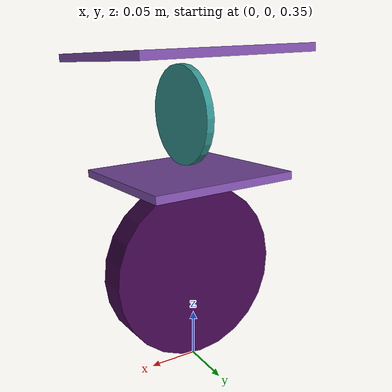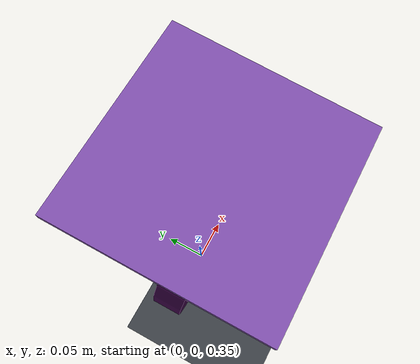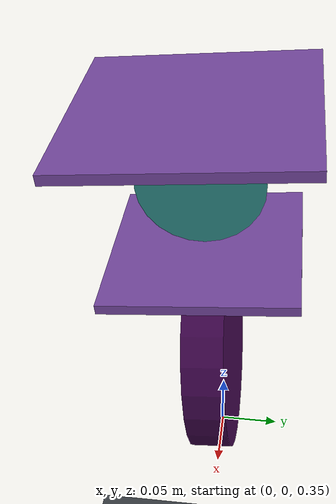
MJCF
<mujoco model="claptrap_scene">
  <include file="claptrap_floating.xml"/>

  <option timestep="0.002" gravity="0 0 -9.81"/>

  <statistic center="0 0 0.15" extent="0.7"/>

  <visual>
    <headlight ambient="0.35 0.35 0.35" diffuse="0.6 0.6 0.6" specular="0.25 0.25 0.25"/>
    <map znear="0.01" zfar="20"/>
    <quality shadowsize="2048" offsamples="4"/>
    <global azimuth="135" elevation="-25" offwidth="1280" offheight="720"/>
  </visual>

  <asset>
    <texture name="skybox" type="skybox" builtin="gradient"
             rgb1="0.3 0.5 0.7" rgb2="0 0 0" width="512" height="512"/>
    <texture name="floor_grid" type="2d" builtin="checker"
             rgb1="0.18 0.2 0.22" rgb2="0.28 0.3 0.32"
             width="512" height="512" mark="edge" markrgb="0.8 0.8 0.8"/>
    <material name="floor_mat" texture="floor_grid" texrepeat="4 4"
              texuniform="true" reflectance="0.25"/>
  </asset>

  <worldbody>
    <light name="key_light" pos="0 -2 3" dir="0 1 -1"
           directional="true" diffuse="0.8 0.8 0.8" specular="0.2 0.2 0.2"/>
    <light name="fill_light" pos="-1.5 1 1.5"
           diffuse="0.25 0.25 0.25" specular="0.05 0.05 0.05"/>

    <camera name="overview" pos="0.7 -1.0 0.65" xyaxes="0.82 0.57 0 -0.26 0.37 0.89"/>
    <camera name="front" pos="0 -1.2 0.35" xyaxes="1 0 0 0 0.25 0.97"/>

    <geom name="floor" type="plane" size="2 2 0.05" material="floor_mat"
          condim="3" friction="1 0.005 0.0001"/>
  </worldbody>
</mujoco>

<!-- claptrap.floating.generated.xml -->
<mujoco model="claptrap">
  <compiler angle="radian" />
  <worldbody>
    <body name="floating_base" pos="0 0 0.35" quat="0.999048 0.043619 0 0">
      <freejoint name="root_free" />
      <geom size="0.075 0.004 0.075" pos="0 0 0.2" quat="0.707107 0.707107 0 0" type="box" contype="0" conaffinity="0" group="1" density="0" rgba="0.491021 0.304987 0.665387 1" />
      <geom size="0.075 0.004 0.075" pos="0 0 0.2" quat="0.707107 0.707107 0 0" type="box" rgba="0.491021 0.304987 0.665387 1" />
      <geom size="0.09 0.004 0.09" pos="0 0 0.32" quat="0.707107 0.707107 0 0" type="box" contype="0" conaffinity="0" group="1" density="0" rgba="0.491021 0.304987 0.665387 1" />
      <geom size="0.09 0.004 0.09" pos="0 0 0.32" quat="0.707107 0.707107 0 0" type="box" rgba="0.491021 0.304987 0.665387 1" />
      <body name="link2" pos="0 0 0.26" quat="-0.5 0.5 -0.5 0.5">
        <inertial pos="0 0 0" quat="0.5 0.5 -0.5 0.5" mass="0.08" diaginertia="0.0001 5.043e-05 5.043e-05" />
        <joint name="plane1_to_link2" pos="0 0 0" axis="0 0 1" actuatorfrcrange="-1000 1000" />
        <geom size="0.05 0.004" type="cylinder" contype="0" conaffinity="0" group="1" density="0" rgba="0.191202 0.571125 0.55834 1" />
        <geom size="0.05 0.004" type="cylinder" rgba="0.191202 0.571125 0.55834 1" />
      </body>
      <body name="link1" pos="0 0 0.1" quat="0.707107 0.707107 0 0">
        <inertial pos="0 0 0" quat="0.5 0.5 -0.5 0.5" mass="1.54" diaginertia="0.006237 0.003258 0.003258" />
        <joint name="base_link_to_link1" pos="0 0 0" axis="0 0 1" actuatorfrcrange="-1000 1000" />
        <geom size="0.09 0.0165" type="cylinder" contype="0" conaffinity="0" group="1" density="0" rgba="0.242281 0.0202886 0.291771 1" />
        <geom size="0.09 0.0165" type="cylinder" rgba="0.242281 0.0202886 0.291771 1" />
      </body>
    </body>
  </worldbody>
</mujoco>

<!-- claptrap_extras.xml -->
<mujoco>
  <actuator>
    <motor name="base_link_to_link1_motor"
           joint="base_link_to_link1"
           gear="1"
           ctrllimited="true"
           ctrlrange="-2 2"/>
    <motor name="plane1_to_link2_motor"
           joint="plane1_to_link2"
           gear="1"
           ctrllimited="true"
           ctrlrange="-0.2 0.2"/>
  </actuator>
</mujoco>

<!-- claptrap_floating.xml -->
<mujoco model="claptrap_floating">
  <include file="claptrap.floating.generated.xml"/>
  <include file="claptrap_extras.xml"/>
</mujoco>
